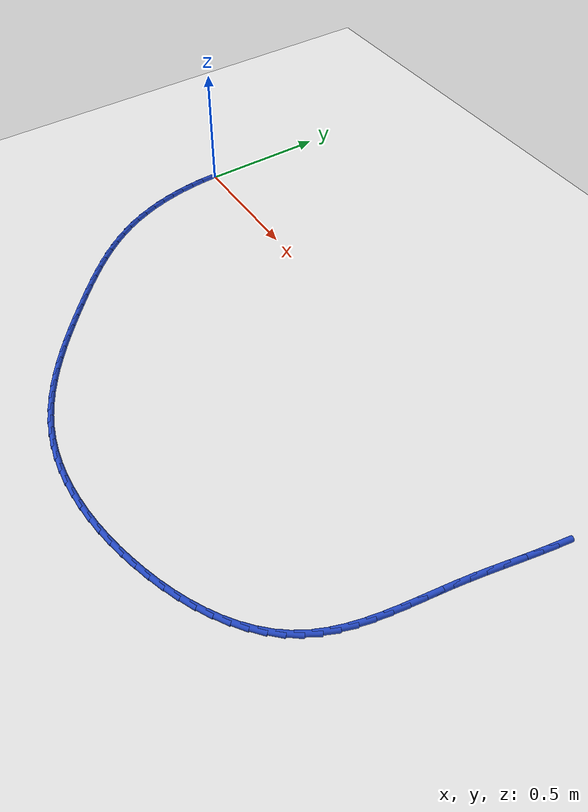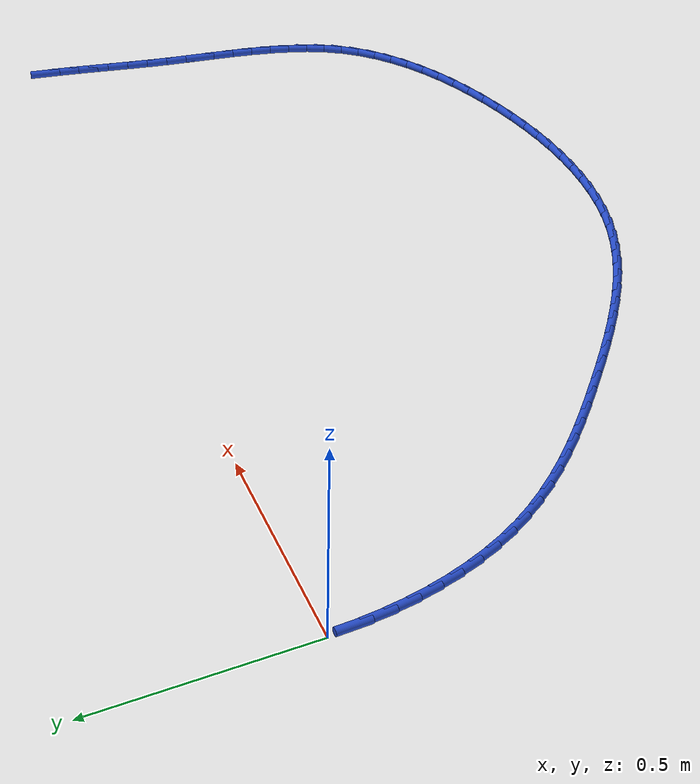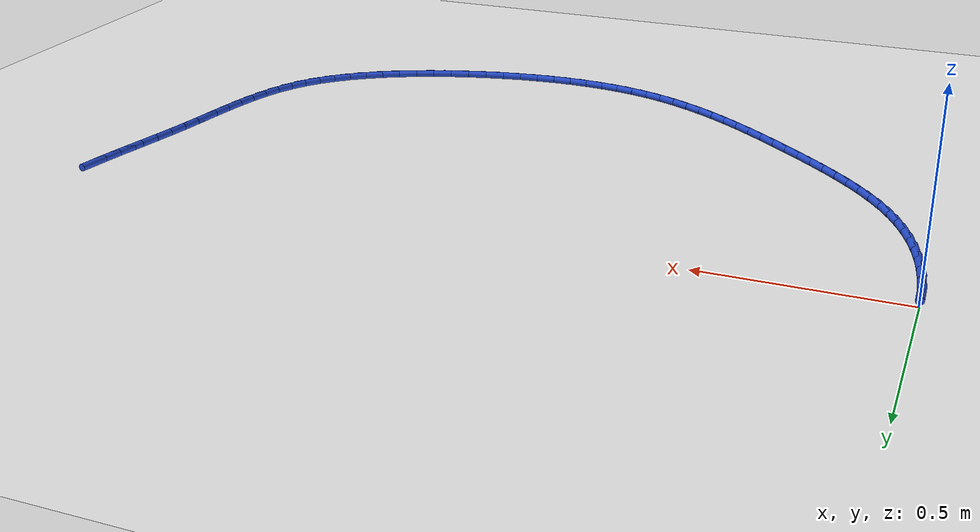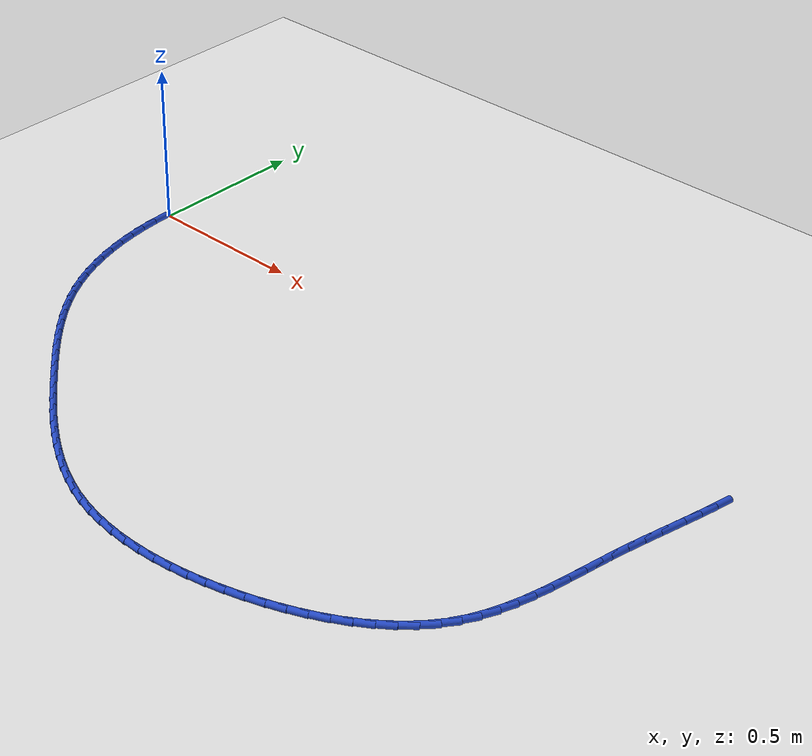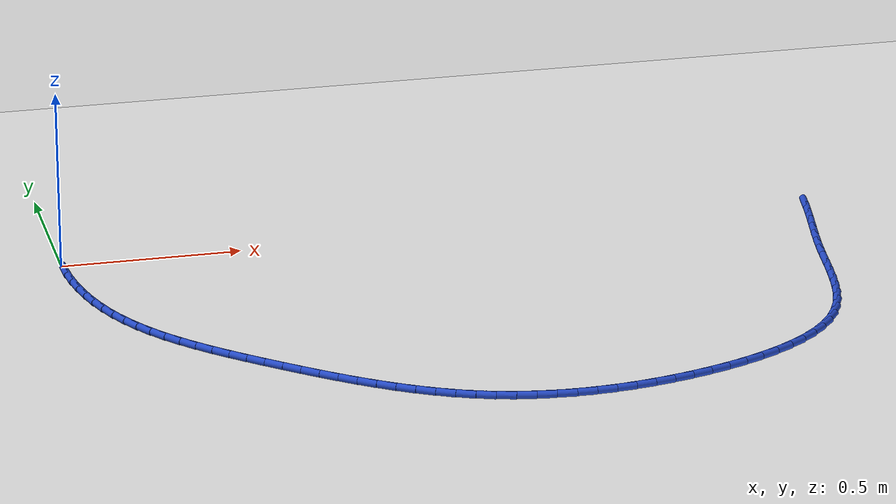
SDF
<sdf version="1.6">
 <world name="default">
  <model name="ground_plane">
   <static>1</static>
   <link name="link">
    <collision name="collision">
     <geometry><plane><normal>0 0 1</normal><size>100 100</size></plane></geometry>
     <surface><friction><ode><mu>100</mu><mu2>50</mu2></ode></friction></surface>
    </collision>
    <visual name="visual">
     <cast_shadows>0</cast_shadows>
     <geometry><plane><normal>0 0 1</normal><size>100 100</size></plane></geometry>
     <material>
      <script><uri>file://media/materials/scripts/gazebo.material</uri><name>Gazebo/WhiteGlow</name></script>
     </material>
    </visual>
   </link>
  </model>
  <model name="line">
   <link name="link_64">
    <pose>2.126277454042228 -0.037352024611841166 0.01 0 1.57 1.3904265512768543</pose>
    <collision name="collision">
     <geometry><cylinder><radius>0.01</radius><length>0.08</length></cylinder></geometry>
    </collision>
    <visual name="visual">
     <material>
      <script><name>Gazebo/Blue</name><uri>file://media/materials/scripts/gazebo.material</uri></script>
     </material>
     <geometry><cylinder><radius>0.01</radius><length>0.08</length></cylinder></geometry>
    </visual>
   </link>
   <link name="link_65">
    <pose>2.116788689642675 -0.0893875741760081 0.01 0 1.57 1.3714396397514488</pose>
    <collision name="collision">
     <geometry><cylinder><radius>0.01</radius><length>0.08</length></cylinder></geometry>
    </collision>
    <visual name="visual">
     <material>
      <script><name>Gazebo/Blue</name><uri>file://media/materials/scripts/gazebo.material</uri></script>
     </material>
     <geometry><cylinder><radius>0.01</radius><length>0.08</length></cylinder></geometry>
    </visual>
   </link>
   <link name="link_66">
    <pose>2.1061937762860703 -0.14182715882312993 0.01 0 1.57 1.3610831764889717</pose>
    <collision name="collision">
     <geometry><cylinder><radius>0.01</radius><length>0.08</length></cylinder></geometry>
    </collision>
    <visual name="visual">
     <material>
      <script><name>Gazebo/Blue</name><uri>file://media/materials/scripts/gazebo.material</uri></script>
     </material>
     <geometry><cylinder><radius>0.01</radius><length>0.08</length></cylinder></geometry>
    </visual>
   </link>
   <link name="link_67">
    <pose>2.0949482200551097 -0.19466224544330565 0.01 0 1.57 1.3590569634684289</pose>
    <collision name="collision">
     <geometry><cylinder><radius>0.01</radius><length>0.08</length></cylinder></geometry>
    </collision>
    <visual name="visual">
     <material>
      <script><name>Gazebo/Blue</name><uri>file://media/materials/scripts/gazebo.material</uri></script>
     </material>
     <geometry><cylinder><radius>0.01</radius><length>0.08</length></cylinder></geometry>
    </visual>
   </link>
   <link name="link_68">
    <pose>2.0835075270324905 -0.2478843009266321 0.01 0 1.57 1.3651585848380936</pose>
    <collision name="collision">
     <geometry><cylinder><radius>0.01</radius><length>0.08</length></cylinder></geometry>
    </collision>
    <visual name="visual">
     <material>
      <script><name>Gazebo/Blue</name><uri>file://media/materials/scripts/gazebo.material</uri></script>
     </material>
     <geometry><cylinder><radius>0.01</radius><length>0.08</length></cylinder></geometry>
    </visual>
   </link>
   <link name="link_69">
    <pose>2.0723272033009077 -0.3014847921632081 0.01 0 1.57 1.3792803123249593</pose>
    <collision name="collision">
     <geometry><cylinder><radius>0.01</radius><length>0.08</length></cylinder></geometry>
    </collision>
    <visual name="visual">
     <material>
      <script><name>Gazebo/Blue</name><uri>file://media/materials/scripts/gazebo.material</uri></script>
     </material>
     <geometry><cylinder><radius>0.01</radius><length>0.08</length></cylinder></geometry>
    </visual>
   </link>
   <link name="link_70">
    <pose>2.0618627549430584 -0.35545518604313286 0.01 0 1.57 1.3994956951220234</pose>
    <collision name="collision">
     <geometry><cylinder><radius>0.01</radius><length>0.08</length></cylinder></geometry>
    </collision>
    <visual name="visual">
     <material>
      <script><name>Gazebo/Blue</name><uri>file://media/materials/scripts/gazebo.material</uri></script>
     </material>
     <geometry><cylinder><radius>0.01</radius><length>0.08</length></cylinder></geometry>
    </visual>
   </link>
   <link name="link_71">
    <pose>2.052468985525466 -0.40975566222004495 0.01 0 1.57 1.4127005046990089</pose>
    <collision name="collision">
     <geometry><cylinder><radius>0.01</radius><length>0.08</length></cylinder></geometry>
    </collision>
    <visual name="visual">
     <material>
      <script><name>Gazebo/Blue</name><uri>file://media/materials/scripts/gazebo.material</uri></script>
     </material>
     <geometry><cylinder><radius>0.01</radius><length>0.08</length></cylinder></geometry>
    </visual>
   </link>
   <link name="link_72">
    <pose>2.0438004704791473 -0.4641288466648889 0.01 0 1.57 1.4133901268427917</pose>
    <collision name="collision">
     <geometry><cylinder><radius>0.01</radius><length>0.08</length></cylinder></geometry>
    </collision>
    <visual name="visual">
     <material>
      <script><name>Gazebo/Blue</name><uri>file://media/materials/scripts/gazebo.material</uri></script>
     </material>
     <geometry><cylinder><radius>0.01</radius><length>0.08</length></cylinder></geometry>
    </visual>
   </link>
   <link name="link_73">
    <pose>2.0352143771352362 -0.5182249637096105 0.01 0 1.57 1.4013544551480064</pose>
    <collision name="collision">
     <geometry><cylinder><radius>0.01</radius><length>0.08</length></cylinder></geometry>
    </collision>
    <visual name="visual">
     <material>
      <script><name>Gazebo/Blue</name><uri>file://media/materials/scripts/gazebo.material</uri></script>
     </material>
     <geometry><cylinder><radius>0.01</radius><length>0.08</length></cylinder></geometry>
    </visual>
   </link>
   <link name="link_74">
    <pose>2.026066788254763 -0.5716939007213745 0.01 0 1.57 1.3760642730083816</pose>
    <collision name="collision">
     <geometry><cylinder><radius>0.01</radius><length>0.08</length></cylinder></geometry>
    </collision>
    <visual name="visual">
     <material>
      <script><name>Gazebo/Blue</name><uri>file://media/materials/scripts/gazebo.material</uri></script>
     </material>
     <geometry><cylinder><radius>0.01</radius><length>0.08</length></cylinder></geometry>
    </visual>
   </link>
   <link name="link_75">
    <pose>2.01571378659876 -0.6241855450673476 0.01 0 1.57 1.336676409125052</pose>
    <collision name="collision">
     <geometry><cylinder><radius>0.01</radius><length>0.08</length></cylinder></geometry>
    </collision>
    <visual name="visual">
     <material>
      <script><name>Gazebo/Blue</name><uri>file://media/materials/scripts/gazebo.material</uri></script>
     </material>
     <geometry><cylinder><radius>0.01</radius><length>0.08</length></cylinder></geometry>
    </visual>
   </link>
   <link name="link_76">
    <pose>2.003511454928259 -0.6753497841146933 0.01 0 1.57 1.2821308101372564</pose>
    <collision name="collision">
     <geometry><cylinder><radius>0.01</radius><length>0.08</length></cylinder></geometry>
    </collision>
    <visual name="visual">
     <material>
      <script><name>Gazebo/Blue</name><uri>file://media/materials/scripts/gazebo.material</uri></script>
     </material>
     <geometry><cylinder><radius>0.01</radius><length>0.08</length></cylinder></geometry>
    </visual>
   </link>
   <link name="link_77">
    <pose>1.98881587600429 -0.7248365052305772 0.01 0 1.57 1.211368466487849</pose>
    <collision name="collision">
     <geometry><cylinder><radius>0.01</radius><length>0.08</length></cylinder></geometry>
    </collision>
    <visual name="visual">
     <material>
      <script><name>Gazebo/Blue</name><uri>file://media/materials/scripts/gazebo.material</uri></script>
     </material>
     <geometry><cylinder><radius>0.01</radius><length>0.08</length></cylinder></geometry>
    </visual>
   </link>
   <link name="link_78">
    <pose>1.9709831325878846 -0.7722955957821656 0.01 0 1.57 1.1237311552320797</pose>
    <collision name="collision">
     <geometry><cylinder><radius>0.01</radius><length>0.08</length></cylinder></geometry>
    </collision>
    <visual name="visual">
     <material>
      <script><name>Gazebo/Blue</name><uri>file://media/materials/scripts/gazebo.material</uri></script>
     </material>
     <geometry><cylinder><radius>0.01</radius><length>0.08</length></cylinder></geometry>
    </visual>
   </link>
   <link name="link_79">
    <pose>1.9493693074400746 -0.8173769431366222 0.01 0 1.57 1.019589746996961</pose>
    <collision name="collision">
     <geometry><cylinder><radius>0.01</radius><length>0.08</length></cylinder></geometry>
    </collision>
    <visual name="visual">
     <material>
      <script><name>Gazebo/Blue</name><uri>file://media/materials/scripts/gazebo.material</uri></script>
     </material>
     <geometry><cylinder><radius>0.01</radius><length>0.08</length></cylinder></geometry>
    </visual>
   </link>
   <link name="link_80">
    <pose>1.9233315457552478 -0.8597308426375612 0.01 0 1.57 0.9071395103590233</pose>
    <collision name="collision">
     <geometry><cylinder><radius>0.01</radius><length>0.08</length></cylinder></geometry>
    </collision>
    <visual name="visual">
     <material>
      <script><name>Gazebo/Blue</name><uri>file://media/materials/scripts/gazebo.material</uri></script>
     </material>
     <geometry><cylinder><radius>0.01</radius><length>0.08</length></cylinder></geometry>
    </visual>
   </link>
   <link name="link_81">
    <pose>1.8925276045355455 -0.8991230251395536 0.01 0 1.57 0.8031088955958864</pose>
    <collision name="collision">
     <geometry><cylinder><radius>0.01</radius><length>0.08</length></cylinder></geometry>
    </collision>
    <visual name="visual">
     <material>
      <script><name>Gazebo/Blue</name><uri>file://media/materials/scripts/gazebo.material</uri></script>
     </material>
     <geometry><cylinder><radius>0.01</radius><length>0.08</length></cylinder></geometry>
    </visual>
   </link>
   <link name="link_82">
    <pose>1.8573273973506723 -0.9355926909855287 0.01 0 1.57 0.7099741543299648</pose>
    <collision name="collision">
     <geometry><cylinder><radius>0.01</radius><length>0.08</length></cylinder></geometry>
    </collision>
    <visual name="visual">
     <material>
      <script><name>Gazebo/Blue</name><uri>file://media/materials/scripts/gazebo.material</uri></script>
     </material>
     <geometry><cylinder><radius>0.01</radius><length>0.08</length></cylinder></geometry>
    </visual>
   </link>
   <link name="link_83">
    <pose>1.8182039672719061 -0.9692186424448925 0.01 0 1.57 0.627233858247255</pose>
    <collision name="collision">
     <geometry><cylinder><radius>0.01</radius><length>0.08</length></cylinder></geometry>
    </collision>
    <visual name="visual">
     <material>
      <script><name>Gazebo/Blue</name><uri>file://media/materials/scripts/gazebo.material</uri></script>
     </material>
     <geometry><cylinder><radius>0.01</radius><length>0.08</length></cylinder></geometry>
    </visual>
   </link>
   <link name="link_84">
    <pose>1.775630357370528 -1.0000796817870514 0.01 0 1.57 0.5539399633412884</pose>
    <collision name="collision">
     <geometry><cylinder><radius>0.01</radius><length>0.08</length></cylinder></geometry>
    </collision>
    <visual name="visual">
     <material>
      <script><name>Gazebo/Blue</name><uri>file://media/materials/scripts/gazebo.material</uri></script>
     </material>
     <geometry><cylinder><radius>0.01</radius><length>0.08</length></cylinder></geometry>
    </visual>
   </link>
   <link name="link_85">
    <pose>1.730079610717815 -1.0282546112814117 0.01 0 1.57 0.4889583744527145</pose>
    <collision name="collision">
     <geometry><cylinder><radius>0.01</radius><length>0.08</length></cylinder></geometry>
    </collision>
    <visual name="visual">
     <material>
      <script><name>Gazebo/Blue</name><uri>file://media/materials/scripts/gazebo.material</uri></script>
     </material>
     <geometry><cylinder><radius>0.01</radius><length>0.08</length></cylinder></geometry>
    </visual>
   </link>
   <link name="link_86">
    <pose>1.6820247703850444 -1.05382223319738 0.01 0 1.57 0.43113226080847566</pose>
    <collision name="collision">
     <geometry><cylinder><radius>0.01</radius><length>0.08</length></cylinder></geometry>
    </collision>
    <visual name="visual">
     <material>
      <script><name>Gazebo/Blue</name><uri>file://media/materials/scripts/gazebo.material</uri></script>
     </material>
     <geometry><cylinder><radius>0.01</radius><length>0.08</length></cylinder></geometry>
    </visual>
   </link>
   <link name="link_87">
    <pose>1.6319388794434972 -1.0768613498043627 0.01 0 1.57 0.37936833139950127</pose>
    <collision name="collision">
     <geometry><cylinder><radius>0.01</radius><length>0.08</length></cylinder></geometry>
    </collision>
    <visual name="visual">
     <material>
      <script><name>Gazebo/Blue</name><uri>file://media/materials/scripts/gazebo.material</uri></script>
     </material>
     <geometry><cylinder><radius>0.01</radius><length>0.08</length></cylinder></geometry>
    </visual>
   </link>
   <link name="link_88">
    <pose>1.5802949809644509 -1.0974507633717656 0.01 0 1.57 0.33267200068507324</pose>
    <collision name="collision">
     <geometry><cylinder><radius>0.01</radius><length>0.08</length></cylinder></geometry>
    </collision>
    <visual name="visual">
     <material>
      <script><name>Gazebo/Blue</name><uri>file://media/materials/scripts/gazebo.material</uri></script>
     </material>
     <geometry><cylinder><radius>0.01</radius><length>0.08</length></cylinder></geometry>
    </visual>
   </link>
   <link name="link_89">
    <pose>1.5275661180191837 -1.115669276168996 0.01 0 1.57 0.29013536849773414</pose>
    <collision name="collision">
     <geometry><cylinder><radius>0.01</radius><length>0.08</length></cylinder></geometry>
    </collision>
    <visual name="visual">
     <material>
      <script><name>Gazebo/Blue</name><uri>file://media/materials/scripts/gazebo.material</uri></script>
     </material>
     <geometry><cylinder><radius>0.01</radius><length>0.08</length></cylinder></geometry>
    </visual>
   </link>
   <link name="link_90">
    <pose>1.4742241694905016 -1.1315950598229991 0.01 0 1.57 0.24936747027256348</pose>
    <collision name="collision">
     <geometry><cylinder><radius>0.01</radius><length>0.08</length></cylinder></geometry>
    </collision>
    <visual name="visual">
     <material>
      <script><name>Gazebo/Blue</name><uri>file://media/materials/scripts/gazebo.material</uri></script>
     </material>
     <geometry><cylinder><radius>0.01</radius><length>0.08</length></cylinder></geometry>
    </visual>
   </link>
   <link name="link_91">
    <pose>1.4206270419576765 -1.1452445470106924 0.01 0 1.57 0.2069798177866716</pose>
    <collision name="collision">
     <geometry><cylinder><radius>0.01</radius><length>0.08</length></cylinder></geometry>
    </collision>
    <visual name="visual">
     <material>
      <script><name>Gazebo/Blue</name><uri>file://media/materials/scripts/gazebo.material</uri></script>
     </material>
     <geometry><cylinder><radius>0.01</radius><length>0.08</length></cylinder></geometry>
    </visual>
   </link>
   <link name="link_92">
    <pose>1.3669244564433785 -1.1565213960131302 0.01 0 1.57 0.16241241957640917</pose>
    <collision name="collision">
     <geometry><cylinder><radius>0.01</radius><length>0.08</length></cylinder></geometry>
    </collision>
    <visual name="visual">
     <material>
      <script><name>Gazebo/Blue</name><uri>file://media/materials/scripts/gazebo.material</uri></script>
     </material>
     <geometry><cylinder><radius>0.01</radius><length>0.08</length></cylinder></geometry>
    </visual>
   </link>
   <link name="link_93">
    <pose>1.3132439552311672 -1.1653172508585798 0.01 0 1.57 0.11542714882639914</pose>
    <collision name="collision">
     <geometry><cylinder><radius>0.01</radius><length>0.08</length></cylinder></geometry>
    </collision>
    <visual name="visual">
     <material>
      <script><name>Gazebo/Blue</name><uri>file://media/materials/scripts/gazebo.material</uri></script>
     </material>
     <geometry><cylinder><radius>0.01</radius><length>0.08</length></cylinder></geometry>
    </visual>
   </link>
   <link name="link_94">
    <pose>1.2597130806046017 -1.1715237555753084 0.01 0 1.57 0.06579324760775725</pose>
    <collision name="collision">
     <geometry><cylinder><radius>0.01</radius><length>0.08</length></cylinder></geometry>
    </collision>
    <visual name="visual">
     <material>
      <script><name>Gazebo/Blue</name><uri>file://media/materials/scripts/gazebo.material</uri></script>
     </material>
     <geometry><cylinder><radius>0.01</radius><length>0.08</length></cylinder></geometry>
    </visual>
   </link>
   <link name="link_95">
    <pose>1.2064593748472454 -1.175032554191583 0.01 0 1.57 0.013296281912862865</pose>
    <collision name="collision">
     <geometry><cylinder><radius>0.01</radius><length>0.08</length></cylinder></geometry>
    </collision>
    <visual name="visual">
     <material>
      <script><name>Gazebo/Blue</name><uri>file://media/materials/scripts/gazebo.material</uri></script>
     </material>
     <geometry><cylinder><radius>0.01</radius><length>0.08</length></cylinder></geometry>
    </visual>
   </link>
   <link name="link_96">
    <pose>1.1536103802426576 -1.1757352907356702 0.01 0 1.57 -0.042249676058826034</pose>
    <collision name="collision">
     <geometry><cylinder><radius>0.01</radius><length>0.08</length></cylinder></geometry>
    </collision>
    <visual name="visual">
     <material>
      <script><name>Gazebo/Blue</name><uri>file://media/materials/scripts/gazebo.material</uri></script>
     </material>
     <geometry><cylinder><radius>0.01</radius><length>0.08</length></cylinder></geometry>
    </visual>
   </link>
   <link name="link_97">
    <pose>1.101293639074399 -1.1735236092358379 0.01 0 1.57 -0.10098640671895406</pose>
    <collision name="collision">
     <geometry><cylinder><radius>0.01</radius><length>0.08</length></cylinder></geometry>
    </collision>
    <visual name="visual">
     <material>
      <script><name>Gazebo/Blue</name><uri>file://media/materials/scripts/gazebo.material</uri></script>
     </material>
     <geometry><cylinder><radius>0.01</radius><length>0.08</length></cylinder></geometry>
    </visual>
   </link>
   <link name="link_98">
    <pose>1.0496366936260297 -1.1682891537203524 0.01 0 1.57 -0.16299265210764513</pose>
    <collision name="collision">
     <geometry><cylinder><radius>0.01</radius><length>0.08</length></cylinder></geometry>
    </collision>
    <visual name="visual">
     <material>
      <script><name>Gazebo/Blue</name><uri>file://media/materials/scripts/gazebo.material</uri></script>
     </material>
     <geometry><cylinder><radius>0.01</radius><length>0.08</length></cylinder></geometry>
    </visual>
   </link>
   <link name="link_99">
    <pose>0.9987670861811105 -1.1599235682174813 0.01 0 1.57 -0.228262905016414</pose>
    <collision name="collision">
     <geometry><cylinder><radius>0.01</radius><length>0.08</length></cylinder></geometry>
    </collision>
    <visual name="visual">
     <material>
      <script><name>Gazebo/Blue</name><uri>file://media/materials/scripts/gazebo.material</uri></script>
     </material>
     <geometry><cylinder><radius>0.01</radius><length>0.08</length></cylinder></geometry>
    </visual>
   </link>
   <link name="link_100">
    <pose>0.9488123590232032 -1.1483184967554914 0.01 0 1.57 -0.29665506483109044</pose>
    <collision name="collision">
     <geometry><cylinder><radius>0.01</radius><length>0.08</length></cylinder></geometry>
    </collision>
    <visual name="visual">
     <material>
      <script><name>Gazebo/Blue</name><uri>file://media/materials/scripts/gazebo.material</uri></script>
     </material>
     <geometry><cylinder><radius>0.01</radius><length>0.08</length></cylinder></geometry>
    </visual>
   </link>
   <link name="link_101">
    <pose>0.8998993555640281 -1.1333670136462748 0.01 0 1.57 -0.3650389562068543</pose>
    <collision name="collision">
     <geometry><cylinder><radius>0.01</radius><length>0.08</length></cylinder></geometry>
    </collision>
    <visual name="visual">
     <material>
      <script><name>Gazebo/Blue</name><uri>file://media/materials/scripts/gazebo.material</uri></script>
     </material>
     <geometry><cylinder><radius>0.01</radius><length>0.08</length></cylinder></geometry>
    </visual>
   </link>
   <link name="link_102">
    <pose>0.8520896642219397 -1.1150957415052223 0.01 0 1.57 -0.42783934443365057</pose>
    <collision name="collision">
     <geometry><cylinder><radius>0.01</radius><length>0.08</length></cylinder></geometry>
    </collision>
    <visual name="visual">
     <material>
      <script><name>Gazebo/Blue</name><uri>file://media/materials/scripts/gazebo.material</uri></script>
     </material>
     <geometry><cylinder><radius>0.01</radius><length>0.08</length></cylinder></geometry>
    </visual>
   </link>
   <link name="link_103">
    <pose>0.8053273870710455 -1.0937717458801226 0.01 0 1.57 -0.48427531197080825</pose>
    <collision name="collision">
     <geometry><cylinder><radius>0.01</radius><length>0.08</length></cylinder></geometry>
    </collision>
    <visual name="visual">
     <material>
      <script><name>Gazebo/Blue</name><uri>file://media/materials/scripts/gazebo.material</uri></script>
     </material>
     <geometry><cylinder><radius>0.01</radius><length>0.08</length></cylinder></geometry>
    </visual>
   </link>
   <link name="link_104">
    <pose>0.7595443347972817 -1.0696872473904722 0.01 0 1.57 -0.5343273578609434</pose>
    <collision name="collision">
     <geometry><cylinder><radius>0.01</radius><length>0.08</length></cylinder></geometry>
    </collision>
    <visual name="visual">
     <material>
      <script><name>Gazebo/Blue</name><uri>file://media/materials/scripts/gazebo.material</uri></script>
     </material>
     <geometry><cylinder><radius>0.01</radius><length>0.08</length></cylinder></geometry>
    </visual>
   </link>
   <link name="link_105">
    <pose>0.7146723180865856 -1.0431344666557687 0.01 0 1.57 -0.57812763421388</pose>
    <collision name="collision">
     <geometry><cylinder><radius>0.01</radius><length>0.08</length></cylinder></geometry>
    </collision>
    <visual name="visual">
     <material>
      <script><name>Gazebo/Blue</name><uri>file://media/materials/scripts/gazebo.material</uri></script>
     </material>
     <geometry><cylinder><radius>0.01</radius><length>0.08</length></cylinder></geometry>
    </visual>
   </link>
   <link name="link_106">
    <pose>0.670643147624895 -1.0144056242955106 0.01 0 1.57 -0.6158976306460245</pose>
    <collision name="collision">
     <geometry><cylinder><radius>0.01</radius><length>0.08</length></cylinder></geometry>
    </collision>
    <visual name="visual">
     <material>
      <script><name>Gazebo/Blue</name><uri>file://media/materials/scripts/gazebo.material</uri></script>
     </material>
     <geometry><cylinder><radius>0.01</radius><length>0.08</length></cylinder></geometry>
    </visual>
   </link>
   <link name="link_107">
    <pose>0.6273886340981458 -0.9837929409291956 0.01 0 1.57 -0.6478978379314169</pose>
    <collision name="collision">
     <geometry><cylinder><radius>0.01</radius><length>0.08</length></cylinder></geometry>
    </collision>
    <visual name="visual">
     <material>
      <script><name>Gazebo/Blue</name><uri>file://media/materials/scripts/gazebo.material</uri></script>
     </material>
     <geometry><cylinder><radius>0.01</radius><length>0.08</length></cylinder></geometry>
    </visual>
   </link>
   <link name="link_108">
    <pose>0.5848405881922768 -0.9515886371763218 0.01 0 1.57 -0.6743900529753506</pose>
    <collision name="collision">
     <geometry><cylinder><radius>0.01</radius><length>0.08</length></cylinder></geometry>
    </collision>
    <visual name="visual">
     <material>
      <script><name>Gazebo/Blue</name><uri>file://media/materials/scripts/gazebo.material</uri></script>
     </material>
     <geometry><cylinder><radius>0.01</radius><length>0.08</length></cylinder></geometry>
    </visual>
   </link>
   <link name="link_109">
    <pose>0.5429308205932243 -0.9180849336563865 0.01 0 1.57 -0.6956106238813049</pose>
    <collision name="collision">
     <geometry><cylinder><radius>0.01</radius><length>0.08</length></cylinder></geometry>
    </collision>
    <visual name="visual">
     <material>
      <script><name>Gazebo/Blue</name><uri>file://media/materials/scripts/gazebo.material</uri></script>
     </material>
     <geometry><cylinder><radius>0.01</radius><length>0.08</length></cylinder></geometry>
    </visual>
   </link>
   <link name="link_110">
    <pose>0.5015911419869251 -0.8835740509888874 0.01 0 1.57 -0.711752074197887</pose>
    <collision name="collision">
     <geometry><cylinder><radius>0.01</radius><length>0.08</length></cylinder></geometry>
    </collision>
    <visual name="visual">
     <material>
      <script><name>Gazebo/Blue</name><uri>file://media/materials/scripts/gazebo.material</uri></script>
     </material>
     <geometry><cylinder><radius>0.01</radius><length>0.08</length></cylinder></geometry>
    </visual>
   </link>
   <link name="link_111">
    <pose>0.4607533630593177 -0.8483482097933234 0.01 0 1.57 -0.7229933448528869</pose>
    <collision name="collision">
     <geometry><cylinder><radius>0.01</radius><length>0.08</length></cylinder></geometry>
    </collision>
    <visual name="visual">
     <material>
      <script><name>Gazebo/Blue</name><uri>file://media/materials/scripts/gazebo.material</uri></script>
     </material>
     <geometry><cylinder><radius>0.01</radius><length>0.08</length></cylinder></geometry>
    </visual>
   </link>
   <link name="link_112">
    <pose>0.42035066136817956 -0.8126977617132543 0.01 0 1.57 -0.7330789980844279</pose>
    <collision name="collision">
     <geometry><cylinder><radius>0.01</radius><length>0.08</length></cylinder></geometry>
    </collision>
    <visual name="visual">
     <material>
      <script><name>Gazebo/Blue</name><uri>file://media/materials/scripts/gazebo.material</uri></script>
     </material>
     <geometry><cylinder><radius>0.01</radius><length>0.08</length></cylinder></geometry>
    </visual>
   </link>
   <link name="link_113">
    <pose>0.38043325482708706 -0.7767530246552841 0.01 0 1.57 -0.7485237057113001</pose>
    <collision name="collision">
     <geometry><cylinder><radius>0.01</radius><length>0.08</length></cylinder></geometry>
    </collision>
    <visual name="visual">
     <material>
      <script><name>Gazebo/Blue</name><uri>file://media/materials/scripts/gazebo.material</uri></script>
     </material>
     <geometry><cylinder><radius>0.01</radius><length>0.08</length></cylinder></geometry>
    </visual>
   </link>
   <link name="link_114">
    <pose>0.34125643090971136 -0.7403639171046859 0.01 0 1.57 -0.7701234210685212</pose>
    <collision name="collision">
     <geometry><cylinder><radius>0.01</radius><length>0.08</length></cylinder></geometry>
    </collision>
    <visual name="visual">
     <material>
      <script><name>Gazebo/Blue</name><uri>file://media/materials/scripts/gazebo.material</uri></script>
     </material>
     <geometry><cylinder><radius>0.01</radius><length>0.08</length></cylinder></geometry>
    </visual>
   </link>
   <link name="link_115">
    <pose>0.30309620504323187 -0.7033520154263004 0.01 0 1.57 -0.7980581429595509</pose>
    <collision name="collision">
     <geometry><cylinder><radius>0.01</radius><length>0.08</length></cylinder></geometry>
    </collision>
    <visual name="visual">
     <material>
      <script><name>Gazebo/Blue</name><uri>file://media/materials/scripts/gazebo.material</uri></script>
     </material>
     <geometry><cylinder><radius>0.01</radius><length>0.08</length></cylinder></geometry>
    </visual>
   </link>
   <link name="link_116">
    <pose>0.26622859265482907 -0.6655388959849703 0.01 0 1.57 -0.8325180049490564</pose>
    <collision name="collision">
     <geometry><cylinder><radius>0.01</radius><length>0.08</length></cylinder></geometry>
    </collision>
    <visual name="visual">
     <material>
      <script><name>Gazebo/Blue</name><uri>file://media/materials/scripts/gazebo.material</uri></script>
     </material>
     <geometry><cylinder><radius>0.01</radius><length>0.08</length></cylinder></geometry>
    </visual>
   </link>
   <link name="link_117">
    <pose>0.23092960917168223 -0.6267461351455356 0.01 0 1.57 -0.8736699438338282</pose>
    <collision name="collision">
     <geometry><cylinder><radius>0.01</radius><length>0.08</length></cylinder></geometry>
    </collision>
    <visual name="visual">
     <material>
      <script><name>Gazebo/Blue</name><uri>file://media/materials/scripts/gazebo.material</uri></script>
     </material>
     <geometry><cylinder><radius>0.01</radius><length>0.08</length></cylinder></geometry>
    </visual>
   </link>
   <link name="link_118">
    <pose>0.1974752700209706 -0.5867953092728372 0.01 0 1.57 -0.9216121911769796</pose>
    <collision name="collision">
     <geometry><cylinder><radius>0.01</radius><length>0.08</length></cylinder></geometry>
    </collision>
    <visual name="visual">
     <material>
      <script><name>Gazebo/Blue</name><uri>file://media/materials/scripts/gazebo.material</uri></script>
     </material>
     <geometry><cylinder><radius>0.01</radius><length>0.08</length></cylinder></geometry>
    </visual>
   </link>
   <link name="link_119">
    <pose>0.16614159062987485 -0.545507994731718 0.01 0 1.57 -0.9763167123563146</pose>
    <collision name="collision">
     <geometry><cylinder><radius>0.01</radius><length>0.08</length></cylinder></geometry>
    </collision>
    <visual name="visual">
     <material>
      <script><name>Gazebo/Blue</name><uri>file://media/materials/scripts/gazebo.material</uri></script>
     </material>
     <geometry><cylinder><radius>0.01</radius><length>0.08</length></cylinder></geometry>
    </visual>
   </link>
   <link name="link_120">
    <pose>0.13720458642557415 -0.5027057678870179 0.01 0 1.57 -1.0375588723937992</pose>
    <collision name="collision">
     <geometry><cylinder><radius>0.01</radius><length>0.08</length></cylinder></geometry>
    </collision>
    <visual name="visual">
     <material>
      <script><name>Gazebo/Blue</name><uri>file://media/materials/scripts/gazebo.material</uri></script>
     </material>
     <geometry><cylinder><radius>0.01</radius><length>0.08</length></cylinder></geometry>
    </visual>
   </link>
   <link name="link_121">
    <pose>0.11094011554766367 -0.4582103916662865 0.01 0 1.57 -1.1027048832003636</pose>
    <collision name="collision">
     <geometry><cylinder><radius>0.01</radius><length>0.08</length></cylinder></geometry>
    </collision>
    <visual name="visual">
     <material>
      <script><name>Gazebo/Blue</name><uri>file://media/materials/scripts/gazebo.material</uri></script>
     </material>
     <geometry><cylinder><radius>0.01</radius><length>0.08</length></cylinder></geometry>
    </visual>
   </link>
   <link name="link_122">
    <pose>0.08754562291236571 -0.4119366368676155 0.01 0 1.57 -1.1657949091773052</pose>
    <collision name="collision">
     <geometry><cylinder><radius>0.01</radius><length>0.08</length></cylinder></geometry>
    </collision>
    <visual name="visual">
     <material>
      <script><name>Gazebo/Blue</name><uri>file://media/materials/scripts/gazebo.material</uri></script>
     </material>
     <geometry><cylinder><radius>0.01</radius><length>0.08</length></cylinder></geometry>
    </visual>
   </link>
   <link name="link_123">
    <pose>0.0670133978854776 -0.36404261437963426 0.01 0 1.57 -1.2260176492237185</pose>
    <collision name="collision">
     <geometry><cylinder><radius>0.01</radius><length>0.08</length></cylinder></geometry>
    </collision>
    <visual name="visual">
     <material>
      <script><name>Gazebo/Blue</name><uri>file://media/materials/scripts/gazebo.material</uri></script>
     </material>
     <geometry><cylinder><radius>0.01</radius><length>0.08</length></cylinder></geometry>
    </visual>
   </link>
   <link name="link_124">
    <pose>0.04930259147018149 -0.3147257413254022 0.01 0 1.57 -1.2835643223184274</pose>
    <collision name="collision">
     <geometry><cylinder><radius>0.01</radius><length>0.08</length></cylinder></geometry>
    </collision>
    <visual name="visual">
     <material>
      <script><name>Gazebo/Blue</name><uri>file://media/materials/scripts/gazebo.material</uri></script>
     </material>
     <geometry><cylinder><radius>0.01</radius><length>0.08</length></cylinder></geometry>
    </visual>
   </link>
   <link name="link_125">
    <pose>0.03437235466965869 -0.26418343482797746 0.01 0 1.57 -1.3386710540797477</pose>
    <collision name="collision">
     <geometry><cylinder><radius>0.01</radius><length>0.08</length></cylinder></geometry>
    </collision>
    <visual name="visual">
     <material>
      <script><name>Gazebo/Blue</name><uri>file://media/materials/scripts/gazebo.material</uri></script>
     </material>
     <geometry><cylinder><radius>0.01</radius><length>0.08</length></cylinder></geometry>
    </visual>
   </link>
   <link name="link_126">
    <pose>0.022181838487090634 -0.21261311201041724 0.01 0 1.57 -1.3916041607952232</pose>
    <collision name="collision">
     <geometry><cylinder><radius>0.01</radius><length>0.08</length></cylinder></geometry>
    </collision>
    <visual name="visual">
     <material>
      <script><name>Gazebo/Blue</name><uri>file://media/materials/scripts/gazebo.material</uri></script>
     </material>
     <geometry><cylinder><radius>0.01</radius><length>0.08</length></cylinder></geometry>
    </visual>
   </link>
   <link name="link_127">
    <pose>0.012690193925659269 -0.16021218999578152 0.01 0 1.57 -1.4426490819732714</pose>
    <collision name="collision">
     <geometry><cylinder><radius>0.01</radius><length>0.08</length></cylinder></geometry>
    </collision>
    <visual name="visual">
     <material>
      <script><name>Gazebo/Blue</name><uri>file://media/materials/scripts/gazebo.material</uri></script>
     </material>
     <geometry><cylinder><radius>0.01</radius><length>0.08</length></cylinder></geometry>
    </visual>
   </link>
   <link name="link_128">
    <pose>0.005856571988545977 -0.10717808590712782 0.01 0 1.57 -1.4921026426258328</pose>
    <collision name="collision">
     <geometry><cylinder><radius>0.01</radius><length>0.08</length></cylinder></geometry>
    </collision>
    <visual name="visual">
     <material>
      <script><name>Gazebo/Blue</name><uri>file://media/materials/scripts/gazebo.material</uri></script>
     </material>
     <geometry><cylinder><radius>0.01</radius><length>0.08</length></cylinder></geometry>
    </visual>
   </link>
   <link name="link_129">
    <pose>0.0016401236789323776 -0.05370821686751453 0.01 0 1.57 -1.5402681464221757</pose>
    <collision name="collision">
     <geometry><cylinder><radius>0.01</radius><length>0.08</length></cylinder></geometry>
    </collision>
    <visual name="visual">
     <material>
      <script><name>Gazebo/Blue</name><uri>file://media/materials/scripts/gazebo.material</uri></script>
     </material>
     <geometry><cylinder><radius>0.01</radius><length>0.08</length></cylinder></geometry>
    </visual>
   </link>
  </model>
 </world>
</sdf>
